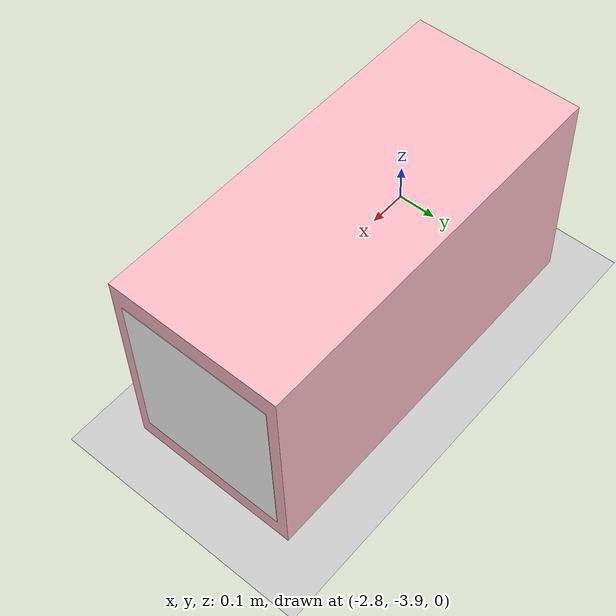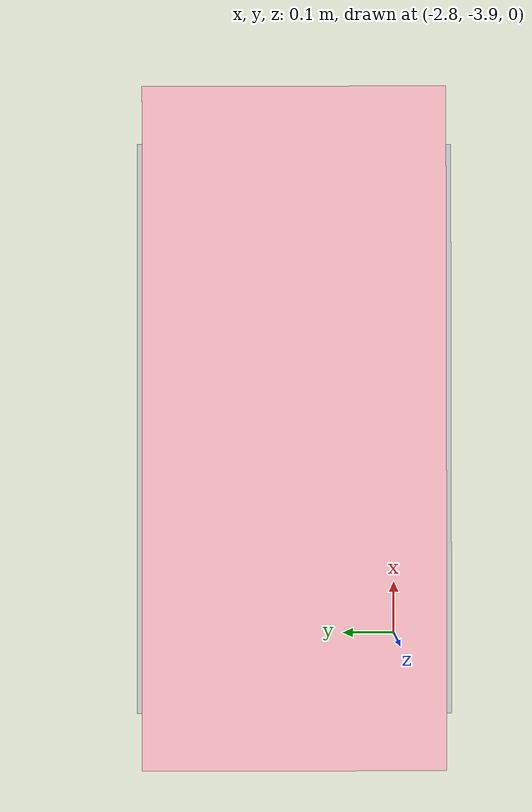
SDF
<sdf version="1.9">
 <world name="pig_pen_8units_world">
  <model name="ground_plane">
   <static>true</static>
   <link name="link">
    <collision name="collision">
     <geometry><plane><normal>0 0 1</normal><size>20 20</size></plane></geometry>
     <surface><friction><ode><mu>1.0</mu><mu2>1.0</mu2></ode></friction></surface>
    </collision>
    <visual name="visual">
     <geometry><plane><normal>0 0 1</normal><size>20 20</size></plane></geometry>
     <material>
      <ambient>0.8 0.8 0.8 1</ambient>
      <diffuse>0.8 0.8 0.8 1</diffuse>
      <specular>0.2 0.2 0.2 1</specular>
     </material>
    </visual>
   </link>
  </model>
  <include><uri>model://farm_pig</uri><name>pig4</name><pose>-2.4 -3.705 0.27 0 0 0</pose></include>
 </world>
</sdf>
